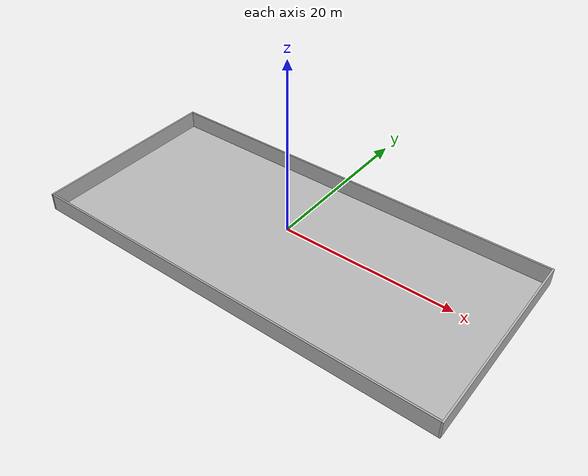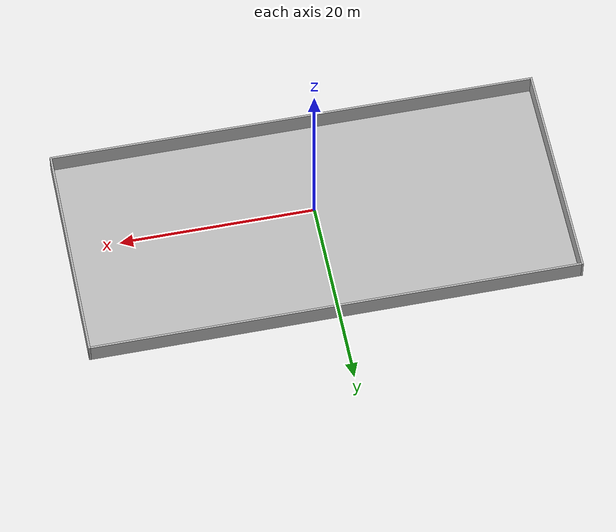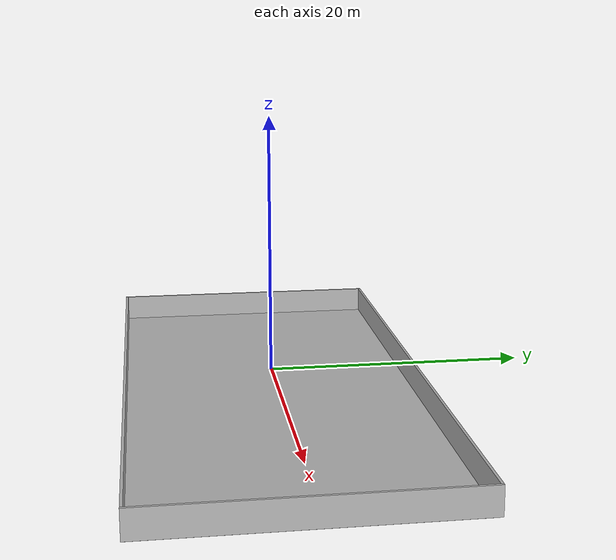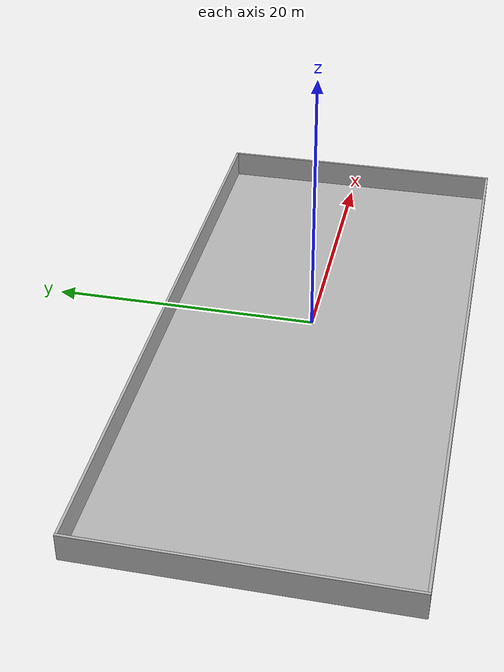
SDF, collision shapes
<?xml version="1.0"?>
<sdf version="1.11">
  <model name="woollett_pool">
    <static>true</static>
    <link name="link">

      <!-- Visual: single GLB (built by build_woollett_glb.py via Blender) -->
      <visual name="pool">
        <pose>0 0 0 0 0 0</pose>
        <geometry>
          <mesh><uri>model://woollett_pool/meshes/woollett_pool.glb</uri></mesh>
        </geometry>
      </visual>

      <!-- Collisions: cheap primitive boxes (floor + 4 walls) -->

      <collision name="floor_c">
        <pose>0.0000 0.0000 -2.1836 0 0 0</pose>
        <geometry><box><size>50.0000 22.8600 0.1000</size></box></geometry>
      </collision>

      <collision name="wall_xpos_c">
        <pose>25.1000 0.0000 -1.0668 0 0 0</pose>
        <geometry><box><size>0.2000 23.2600 2.1336</size></box></geometry>
      </collision>

      <collision name="wall_xneg_c">
        <pose>-25.1000 0.0000 -1.0668 0 0 0</pose>
        <geometry><box><size>0.2000 23.2600 2.1336</size></box></geometry>
      </collision>

      <collision name="wall_ypos_c">
        <pose>0.0000 11.5300 -1.0668 0 0 0</pose>
        <geometry><box><size>50.0000 0.2000 2.1336</size></box></geometry>
      </collision>

      <collision name="wall_yneg_c">
        <pose>0.0000 -11.5300 -1.0668 0 0 0</pose>
        <geometry><box><size>50.0000 0.2000 2.1336</size></box></geometry>
      </collision>
    </link>
  </model>
</sdf>
